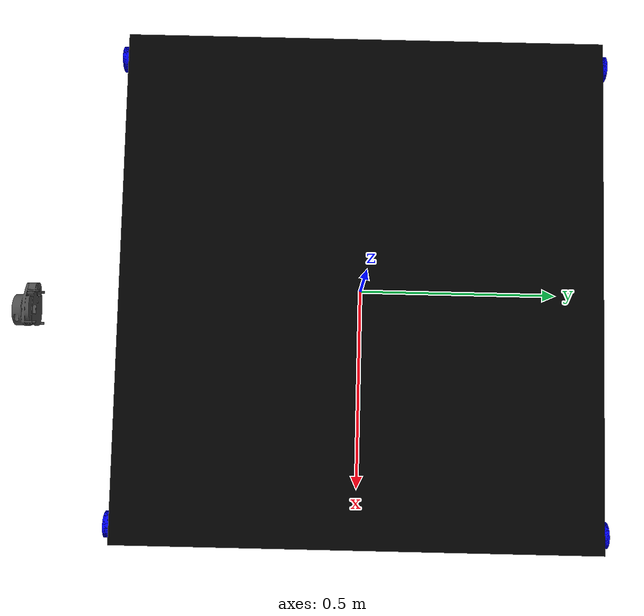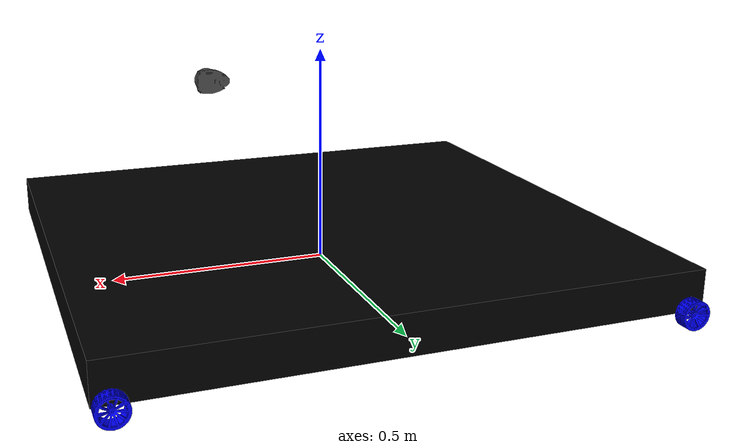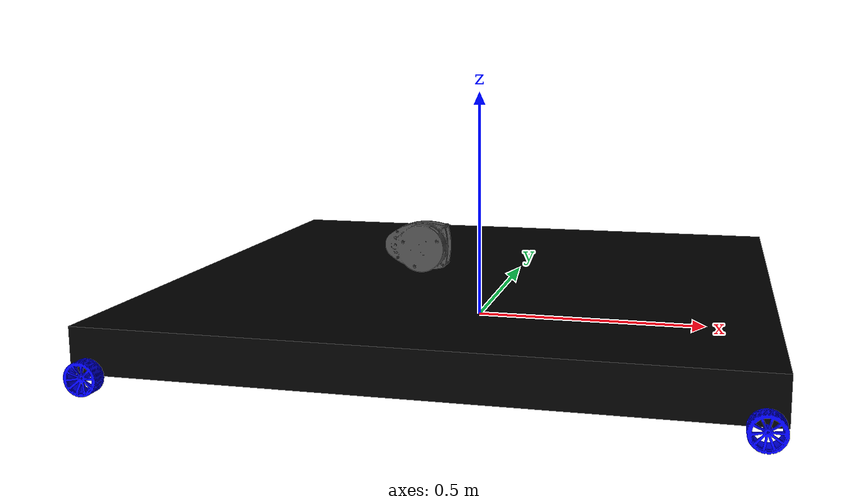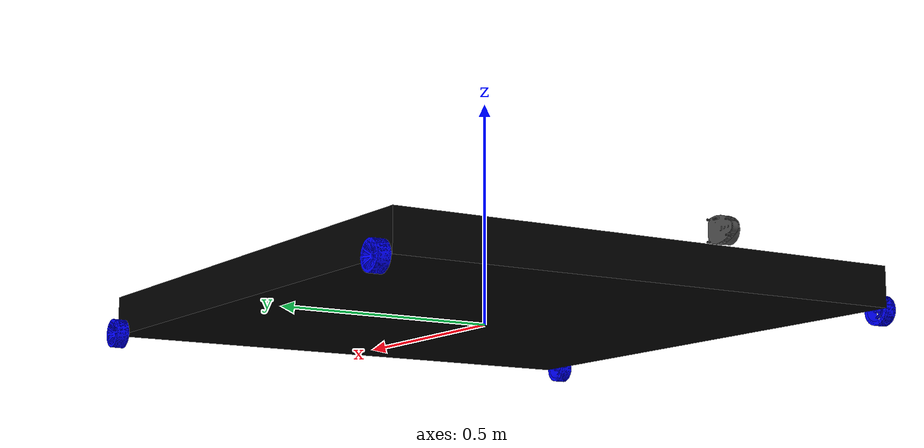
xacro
<?xml version="1.0"?>

<robot name="bumperbot" xmlns:xacro="http://ros.org/wiki/xacro">

  <!-- Start GZ or Ignition depending on ROS 2 Version -->
  <xacro:arg name="is_ignition" default="true"/>

  <!-- Load Simulated or Real Hardware Interfaces -->
  <xacro:arg name="is_sim" default="true"/>

  <!-- Include Gazebo Parameters -->
  <xacro:include filename="$(find bumperbot_description)/urdf/bumperbot_gazebo.xacro" />

  <!-- Include ros2_control Plugins -->
  <xacro:include filename="$(find bumperbot_description)/urdf/bumperbot_ros2_control.xacro" />

  <link name="base_footprint"/>

  <link name="base_link">
    <inertial>
      <origin xyz="0 0 0.04" rpy="0.0 0.25 0.3" />
      <mass value="250.0"/>
      <inertia ixx="2.2124416e-02" ixy="-1.2294101e-04" ixz="3.4938785e-04"
               iyy="2.1193702e-02" iyz="-5.0120904e-05"
               izz="2.0064271e-02" />
    </inertial>
    <visual>
      <origin xyz="0 0 0" rpy="0 0 0" />
      <geometry>
        <mesh filename="package://bumperbot_description/meshes/base_link_for_demo.stl" />
      </geometry>
      <material name="black"/>
    </visual>
    <collision>
      <origin xyz="0 0 0" rpy="0 0 0" />
      <geometry>
        <mesh filename="package://bumperbot_description/meshes/base_link_for_demo.stl" />
      </geometry>
    </collision>
  </link>

  <joint name="base_joint" type="fixed">
    <parent link="base_footprint"/>
    <child link="base_link" />
    <origin xyz="0 0 0.050" rpy="0 0 0"/>
  </joint>

  <link name="wheel_right1_link">
    <inertial>
      <origin xyz="0 -0.014 0" rpy="0 0 0" />
      <mass value="0.0530086090966721" />
      <inertia ixx="1.88176298336665E-05" ixy="-4.8444933029987E-10" ixz="1.88163708851143E-08"
               iyy="3.11510738647764E-05" iyz="-6.93560663069607E-11"
               izz="1.8801969558182E-05" />
    </inertial>
    <visual>
      <origin xyz="0 0 0" rpy="1.57 0 0" />
      <geometry>
        <mesh filename="package://bumperbot_description/meshes/wheel_right_link.STL" />
      </geometry>
      <material name="blue"/>
    </visual>
    <collision>
      <origin xyz="0 -0.015 0" rpy="1.57 0 0" />
      <geometry>
        <sphere radius="0.033"/>
      </geometry>
    </collision>
  </link>

  <joint name="wheel_right1_joint" type="continuous">
    <origin xyz="0.6 -0.6 -0.045" rpy="0 0 0" />
    <parent link="base_link" />
    <child link="wheel_right1_link" />
    <axis xyz="0 1 0" />
  </joint>

  <link
    name="wheel_left1_link">
    <inertial>
      <origin xyz="0 0.014 0" rpy="0 0 0" />
      <mass value="0.0530086043217644" />
      <inertia ixx="1.8792911368909E-05"  ixy="3.31256392204584E-10" ixz="-1.14082001662767E-08"
               iyy="3.11510738759073E-05" iyz="-3.60499245082192E-10"
               izz="1.88266886146847E-05" />
    </inertial>
    <visual>
      <origin xyz="0 0 0" rpy="-1.57 0 0" />
      <geometry>
        <mesh filename="package://bumperbot_description/meshes/wheel_left_link.STL" />
      </geometry>
      <material name="blue"/>
    </visual>
    <collision>
      <origin xyz="0 0.015 0" rpy="-1.57 0 0" />
      <geometry>
        <sphere radius="0.033"/>
      </geometry>
    </collision>
  </link>

  <joint name="wheel_left1_joint" type="continuous">
    <origin xyz="0.6 0.6 -0.045" rpy="0 0 0" />
    <parent link="base_link" />
    <child link="wheel_left1_link" />
    <axis xyz="0 1 0" />
  </joint>

  <link name="wheel_right2_link">
    <inertial>
      <origin xyz="0 -0.014 0" rpy="0 0 0" />
      <mass value="0.0530086090966721" />
      <inertia ixx="1.88176298336665E-05" ixy="-4.8444933029987E-10" ixz="1.88163708851143E-08"
               iyy="3.11510738647764E-05" iyz="-6.93560663069607E-11"
               izz="1.8801969558182E-05" />
    </inertial>
    <visual>
      <origin xyz="0 0 0" rpy="1.57 0 0" />
      <geometry>
        <mesh filename="package://bumperbot_description/meshes/wheel_right_link.STL" />
      </geometry>
      <material name="blue"/>
    </visual>
    <collision>
      <origin xyz="0 -0.015 0" rpy="1.57 0 0" />
      <geometry>
        <sphere radius="0.033"/>
      </geometry>
    </collision>
  </link>

  <joint name="wheel_right2_joint" type="continuous">
    <origin xyz="-0.6 -0.6 -0.045" rpy="0 0 0" />
    <parent link="base_link" />
    <child link="wheel_right2_link" />
    <axis xyz="0 1 0" />
  </joint>

  <link
    name="wheel_left2_link">
    <inertial>
      <origin xyz="0 0.014 0" rpy="0 0 0" />
      <mass value="0.0530086043217644" />
      <inertia ixx="1.8792911368909E-05"  ixy="3.31256392204584E-10" ixz="-1.14082001662767E-08"
               iyy="3.11510738759073E-05" iyz="-3.60499245082192E-10"
               izz="1.88266886146847E-05" />
    </inertial>
    <visual>
      <origin xyz="0 0 0" rpy="-1.57 0 0" />
      <geometry>
        <mesh filename="package://bumperbot_description/meshes/wheel_left_link.STL" />
      </geometry>
      <material name="blue"/>
    </visual>
    <collision>
      <origin xyz="0 0.015 0" rpy="-1.57 0 0" />
      <geometry>
        <sphere radius="0.033"/>
      </geometry>
    </collision>
  </link>

  <joint name="wheel_left2_joint" type="continuous">
    <origin xyz="-0.6 0.6 -0.045" rpy="0 0 0" />
    <parent link="base_link" />
    <child link="wheel_left2_link" />
    <axis xyz="0 1 0" />
  </joint>

  <link name="laser_link">
    <inertial>
      <origin xyz="-0.011945780406062 -0.000381929217680526 -0.0170649378129477" rpy="0 0 0" />
      <mass value="0.073084435549317" />
      <inertia ixx="1.96074931730795E-05" ixy="-3.62091076640009E-07" ixz="4.28230084046735E-07"
               iyy="2.40983835136327E-05" iyz="1.50180909250652E-08"
               izz="4.14184164228595E-05" />
    </inertial>
    <visual>
      <origin xyz="0 0 0" rpy="0 0 0" />
      <geometry>
        <mesh filename="package://bumperbot_description/meshes/laser_link.STL" />
      </geometry>
      <material name="dark_grey"/>
    </visual>
    <collision>
      <origin xyz="0 0 0" rpy="0 0 0" />
      <geometry>
        <mesh filename="package://bumperbot_description/meshes/laser_link.STL" />
      </geometry>
    </collision>
  </link>

  <joint name="laser_joint" type="fixed">
    <origin xyz="-0.0050526 -0.0023221 0.1208" rpy="0 0 3.14" />
    <parent link="base_link" />
    <child link="laser_link" />
    <axis xyz="0 0 0" />
  </joint>

  <material name="blue">
    <color rgba="0 0 1 1"/>
  </material>
  <material name="black">
    <color rgba="0 0 0 1"/>
  </material>
  <material name="silver">
    <color rgba="0.79 0.82 0.93 1"/>
  </material>
  <material name="dark_grey">
    <color rgba="0.3 0.3 0.3 1"/>
  </material>

</robot>
